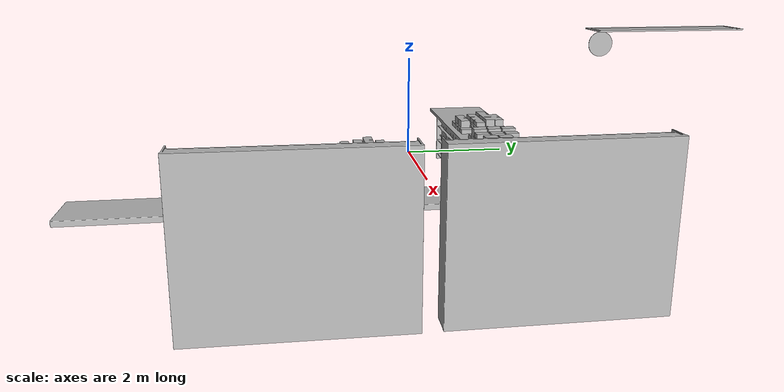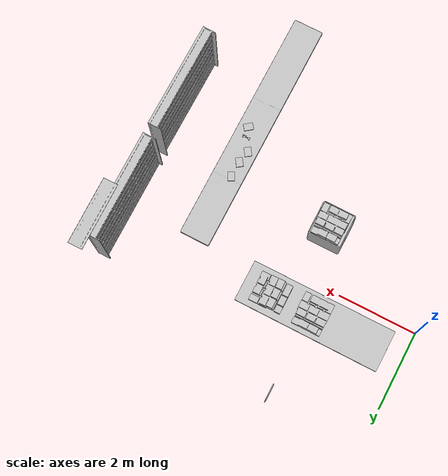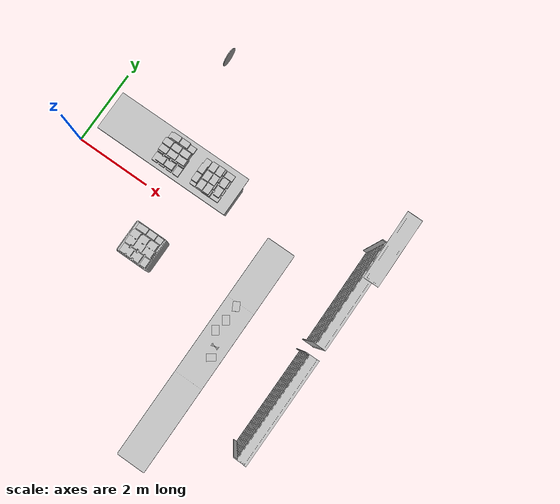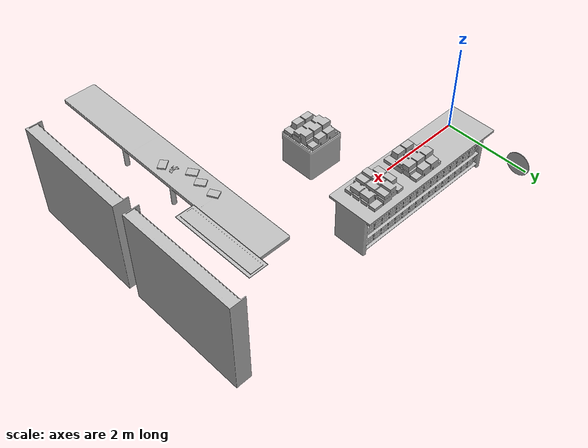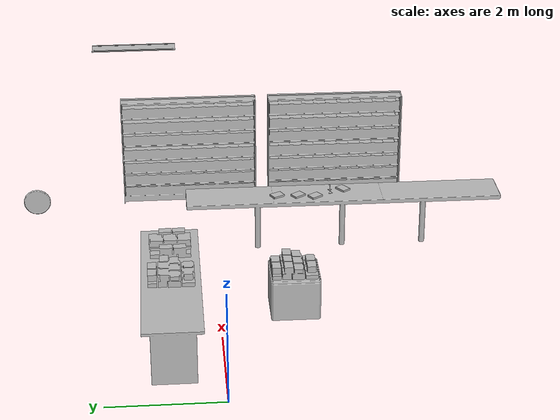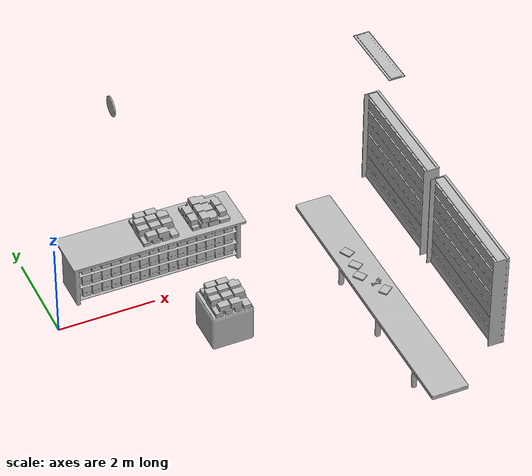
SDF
<sdf version="1.7">
 <world name="default">
  <model name="AirConditionerC_01_001">
   <link name="aws_robomaker_retail_AirConditionerC_01::link">
    <inertial><mass>50</mass></inertial>
    <collision name="collision">
     <geometry>
      <mesh>
       <uri>model://aws_robomaker_retail_AirConditionerC_01/meshes/aws_AirConditionerC_01_collision.DAE</uri>
       <scale>1 1 1</scale>
      </mesh>
     </geometry>
    </collision>
    <visual name="visual">
     <geometry>
      <mesh>
       <uri>model://aws_robomaker_retail_AirConditionerC_01/meshes/aws_AirConditionerC_01_visual.DAE</uri>
      </mesh>
     </geometry>
     <meta><layer>3</layer></meta>
    </visual>
   </link>
   <static>1</static>
   <pose>7.4582 1.42245 3.29094 0 0 -1.56422</pose>
  </model>
  <model name="Bicycle_01_001">
   <link name="aws_robomaker_retail_Bicycle_01::link">
    <inertial>
     <mass>0.04</mass>
     <inertia><ixx>0.1</ixx><ixy>0</ixy><ixz>0</ixz><iyy>0.1</iyy><iyz>0</iyz><izz>0.01</izz></inertia>
    </inertial>
    <collision name="collision">
     <geometry>
      <mesh>
       <uri>model://aws_robomaker_retail_Bicycle_01/meshes/aws_Bicycle_01_collision.DAE</uri>
       <scale>1 1 1</scale>
      </mesh>
     </geometry>
    </collision>
    <visual name="visual">
     <geometry>
      <mesh><uri>model://aws_robomaker_retail_Bicycle_01/meshes/aws_Bicycle_01_visual.DAE</uri></mesh>
     </geometry>
     <meta><layer>1</layer></meta>
    </visual>
   </link>
   <static>1</static>
   <pose>5.68125 -2.24245 0.931246 2e-06 -2.4e-05 -0</pose>
  </model>
  <model name="BookE_01_001">
   <link name="aws_robomaker_retail_BookE_01::link">
    <inertial>
     <mass>1</mass>
     <inertia><ixy>0</ixy><ixz>0</ixz><iyz>0</iyz><ixx>0.0666</ixx><iyy>0.0346</iyy><izz>0.0986</izz></inertia>
    </inertial>
    <collision name="collision">
     <geometry>
      <mesh>
       <uri>model://aws_robomaker_retail_BookE_01/meshes/aws_BookE_01_collision.DAE</uri>
       <scale>1 1 1</scale>
      </mesh>
     </geometry>
    </collision>
    <visual name="visual">
     <geometry>
      <mesh><uri>model://aws_robomaker_retail_BookE_01/meshes/aws_BookE_01_visual.DAE</uri></mesh>
     </geometry>
     <meta><layer>1</layer></meta>
    </visual>
   </link>
   <static>1</static>
   <pose>5.47653 -1.93253 0.948933 4e-06 1e-06 -2.54352</pose>
  </model>
  <model name="BookE_01_003">
   <link name="aws_robomaker_retail_BookE_01::link">
    <inertial>
     <mass>1</mass>
     <inertia><ixy>0</ixy><ixz>0</ixz><iyz>0</iyz><ixx>0.0666</ixx><iyy>0.0346</iyy><izz>0.0986</izz></inertia>
    </inertial>
    <collision name="collision">
     <geometry>
      <mesh>
       <uri>model://aws_robomaker_retail_BookE_01/meshes/aws_BookE_01_collision.DAE</uri>
       <scale>1 1 1</scale>
      </mesh>
     </geometry>
    </collision>
    <visual name="visual">
     <geometry>
      <mesh><uri>model://aws_robomaker_retail_BookE_01/meshes/aws_BookE_01_visual.DAE</uri></mesh>
     </geometry>
     <meta><layer>1</layer></meta>
    </visual>
   </link>
   <static>1</static>
   <pose>5.55255 -1.21421 0.948933 4e-06 -1e-06 -2.65431</pose>
  </model>
  <model name="BookE_01_005">
   <link name="aws_robomaker_retail_BookE_01::link">
    <inertial>
     <mass>1</mass>
     <inertia><ixy>0</ixy><ixz>0</ixz><iyz>0</iyz><ixx>0.0666</ixx><iyy>0.0346</iyy><izz>0.0986</izz></inertia>
    </inertial>
    <collision name="collision">
     <geometry>
      <mesh>
       <uri>model://aws_robomaker_retail_BookE_01/meshes/aws_BookE_01_collision.DAE</uri>
       <scale>1 1 1</scale>
      </mesh>
     </geometry>
    </collision>
    <visual name="visual">
     <geometry>
      <mesh><uri>model://aws_robomaker_retail_BookE_01/meshes/aws_BookE_01_visual.DAE</uri></mesh>
     </geometry>
     <meta><layer>1</layer></meta>
    </visual>
   </link>
   <static>1</static>
   <pose>5.53815 -1.61032 0.948933 0 0 -2.5269</pose>
  </model>
  <model name="BookE_01_011">
   <link name="aws_robomaker_retail_BookE_01::link">
    <inertial>
     <mass>1</mass>
     <inertia><ixy>0</ixy><ixz>0</ixz><iyz>0</iyz><ixx>0.0666</ixx><iyy>0.0346</iyy><izz>0.0986</izz></inertia>
    </inertial>
    <collision name="collision">
     <geometry>
      <mesh>
       <uri>model://aws_robomaker_retail_BookE_01/meshes/aws_BookE_01_collision.DAE</uri>
       <scale>1 1 1</scale>
      </mesh>
     </geometry>
    </collision>
    <visual name="visual">
     <geometry>
      <mesh><uri>model://aws_robomaker_retail_BookE_01/meshes/aws_BookE_01_visual.DAE</uri></mesh>
     </geometry>
     <meta><layer>1</layer></meta>
    </visual>
   </link>
   <static>1</static>
   <pose>5.74923 -2.49202 0.948933 2e-06 1e-06 2.22339</pose>
  </model>
  <model name="BookF_01_001">
   <link name="aws_robomaker_retail_BookF_01::link">
    <inertial>
     <mass>10</mass>
     <inertia>
      <ixx>0.583817</ixx>
      <ixy>0</ixy>
      <ixz>0</ixz>
      <iyy>0.502925</iyy>
      <iyz>0</iyz>
      <izz>0.99304</izz>
     </inertia>
    </inertial>
    <collision name="collision">
     <geometry>
      <mesh>
       <uri>model://aws_robomaker_retail_BookF_01/meshes/aws_BookF_01_collision.DAE</uri>
       <scale>1 1 1</scale>
      </mesh>
     </geometry>
    </collision>
    <visual name="visual">
     <geometry>
      <mesh><uri>model://aws_robomaker_retail_BookF_01/meshes/aws_BookF_01_visual.DAE</uri></mesh>
     </geometry>
     <meta><layer>1</layer></meta>
    </visual>
   </link>
   <static>1</static>
   <pose>2.93178 -1.30325 0.770041 0.003448 -1.1e-05 0.003114</pose>
  </model>
  <model name="BookD_01_004">
   <link name="aws_robomaker_retail_BookD_01::link">
    <inertial><mass>0.5</mass></inertial>
    <collision name="collision">
     <geometry>
      <mesh>
       <uri>model://aws_robomaker_retail_BookD_01/meshes/aws_BookD_01_collision.DAE</uri>
       <scale>1 1 1</scale>
      </mesh>
     </geometry>
    </collision>
    <visual name="visual">
     <geometry>
      <mesh><uri>model://aws_robomaker_retail_BookD_01/meshes/aws_BookD_01_visual.DAE</uri></mesh>
     </geometry>
     <meta><layer>1</layer></meta>
    </visual>
   </link>
   <static>1</static>
   <pose>2.35863 0.854853 1.03815 6e-06 -0 0.001712</pose>
  </model>
  <model name="BookF_01_005">
   <link name="aws_robomaker_retail_BookF_01::link">
    <inertial>
     <mass>10</mass>
     <inertia>
      <ixx>0.583817</ixx>
      <ixy>0</ixy>
      <ixz>0</ixz>
      <iyy>0.502925</iyy>
      <iyz>0</iyz>
      <izz>0.99304</izz>
     </inertia>
    </inertial>
    <collision name="collision">
     <geometry>
      <mesh>
       <uri>model://aws_robomaker_retail_BookF_01/meshes/aws_BookF_01_collision.DAE</uri>
       <scale>1 1 1</scale>
      </mesh>
     </geometry>
    </collision>
    <visual name="visual">
     <geometry>
      <mesh><uri>model://aws_robomaker_retail_BookF_01/meshes/aws_BookF_01_visual.DAE</uri></mesh>
     </geometry>
     <meta><layer>1</layer></meta>
    </visual>
   </link>
   <static>1</static>
   <pose>3.43061 0.856469 1.03816 8e-06 -0 1.58038</pose>
  </model>
  <model name="BookshelfB_01_007">
   <link name="aws_robomaker_retail_BookshelfB_01::link">
    <inertial>
     <mass>50</mass>
     <inertia><ixx>19.8742</ixx><ixy>0</ixy><ixz>0</ixz><iyy>49.1263</iyy><iyz>0</iyz><izz>30.2231</izz></inertia>
    </inertial>
    <collision name="collision">
     <geometry>
      <mesh>
       <uri>model://aws_robomaker_retail_BookshelfB_01/meshes/aws_BookshelfB_01_collision.DAE</uri>
       <scale>1 1 1</scale>
      </mesh>
     </geometry>
    </collision>
    <visual name="visual">
     <geometry>
      <mesh><uri>model://aws_robomaker_retail_BookshelfB_01/meshes/aws_BookshelfB_01_visual.DAE</uri></mesh>
     </geometry>
     <meta><layer>1</layer></meta>
    </visual>
   </link>
   <static>1</static>
   <pose>7.47833 -2.51065 0.017402 1e-05 -1.3e-05 1.56207</pose>
  </model>
  <model name="BookshelfB_01_008">
   <link name="aws_robomaker_retail_BookshelfB_01::link">
    <inertial>
     <mass>50</mass>
     <inertia><ixx>19.8742</ixx><ixy>0</ixy><ixz>0</ixz><iyy>49.1263</iyy><iyz>0</iyz><izz>30.2231</izz></inertia>
    </inertial>
    <collision name="collision">
     <geometry>
      <mesh>
       <uri>model://aws_robomaker_retail_BookshelfB_01/meshes/aws_BookshelfB_01_collision.DAE</uri>
       <scale>1 1 1</scale>
      </mesh>
     </geometry>
    </collision>
    <visual name="visual">
     <geometry>
      <mesh><uri>model://aws_robomaker_retail_BookshelfB_01/meshes/aws_BookshelfB_01_visual.DAE</uri></mesh>
     </geometry>
     <meta><layer>1</layer></meta>
    </visual>
   </link>
   <static>1</static>
   <pose>7.47833 0.402539 0.017181 3e-06 -0.000156 1.5708</pose>
  </model>
  <model name="BookshelfC_01_001">
   <link name="aws_robomaker_retail_BookshelfC_01::link">
    <inertial>
     <mass>50</mass>
     <inertia><ixx>5.5865</ixx><ixy>0</ixy><ixz>0</ixz><iyy>5.47324</iyy><iyz>0</iyz><izz>6.23277</izz></inertia>
    </inertial>
    <collision name="collision">
     <geometry>
      <mesh>
       <uri>model://aws_robomaker_retail_BookshelfC_01/meshes/aws_BookshelfC_01_collision.DAE</uri>
       <scale>1 1 1</scale>
      </mesh>
     </geometry>
    </collision>
    <visual name="visual">
     <geometry>
      <mesh><uri>model://aws_robomaker_retail_BookshelfC_01/meshes/aws_BookshelfC_01_visual.DAE</uri></mesh>
     </geometry>
     <meta><layer>1</layer></meta>
    </visual>
   </link>
   <static>1</static>
   <pose>2.91113 -1.31023 0.008469 0.003452 -3e-06 0.00062</pose>
  </model>
  <model name="DeskB_01_001">
   <link name="aws_robomaker_retail_DeskB_01::link">
    <inertial>
     <mass>50</mass>
     <inertia><ixx>154.884</ixx><ixy>0</ixy><ixz>0</ixz><iyy>7.48424</iyy><iyz>0</iyz><izz>152.099</izz></inertia>
    </inertial>
    <collision name="collision">
     <geometry>
      <mesh>
       <uri>model://aws_robomaker_retail_DeskB_01/meshes/aws_DeskB_01_collision.DAE</uri>
       <scale>1 1 1</scale>
      </mesh>
     </geometry>
    </collision>
    <visual name="visual">
     <geometry>
      <mesh><uri>model://aws_robomaker_retail_DeskB_01/meshes/aws_DeskB_01_visual.DAE</uri></mesh>
     </geometry>
     <meta><layer>1</layer></meta>
    </visual>
   </link>
   <static>1</static>
   <pose>5.62294 -2.47542 -0.181282 0 -0 0</pose>
  </model>
  <model name="DeskA_01_005">
   <link name="aws_robomaker_retail_DeskA_01::link">
    <inertial>
     <mass>20</mass>
     <inertia><ixx>3.49717</ixx><ixy>0</ixy><ixz>0</ixz><iyy>23.5599</iyy><iyz>0</iyz><izz>23.5702</izz></inertia>
    </inertial>
    <collision name="collision">
     <geometry>
      <mesh>
       <uri>model://aws_robomaker_retail_DeskA_01/meshes/aws_DeskA_01_collision.DAE</uri>
       <scale>1 1 1</scale>
      </mesh>
     </geometry>
    </collision>
    <visual name="visual">
     <geometry>
      <mesh><uri>model://aws_robomaker_retail_DeskA_01/meshes/aws_DeskA_01_visual.DAE</uri></mesh>
     </geometry>
     <meta><layer>1</layer></meta>
    </visual>
   </link>
   <static>1</static>
   <pose>2.2982 0.861754 0.014883 -2e-06 0.003451 2.4e-05</pose>
  </model>
  <model name="Horologe_01_001">
   <link name="aws_robomaker_retail_Horologe_01::link">
    <inertial><mass>1</mass></inertial>
    <collision name="collision">
     <geometry>
      <mesh>
       <uri>model://aws_robomaker_retail_Horologe_01/meshes/aws_Horologe_01_collision.DAE</uri>
       <scale>1 1 1</scale>
      </mesh>
     </geometry>
    </collision>
    <visual name="visual">
     <geometry>
      <mesh><uri>model://aws_robomaker_retail_Horologe_01/meshes/aws_Horologe_01_visual.DAE</uri></mesh>
     </geometry>
     <meta><layer>2</layer></meta>
    </visual>
   </link>
   <static>1</static>
   <pose>2.40512 3.02571 2.52519 0 0 -1.56558</pose>
  </model>
 </world>
</sdf>
